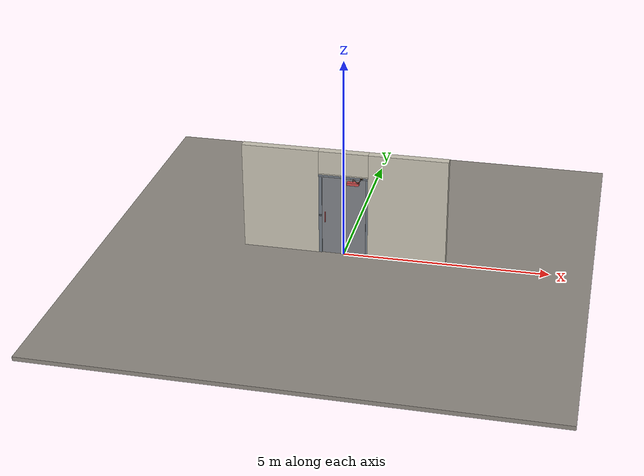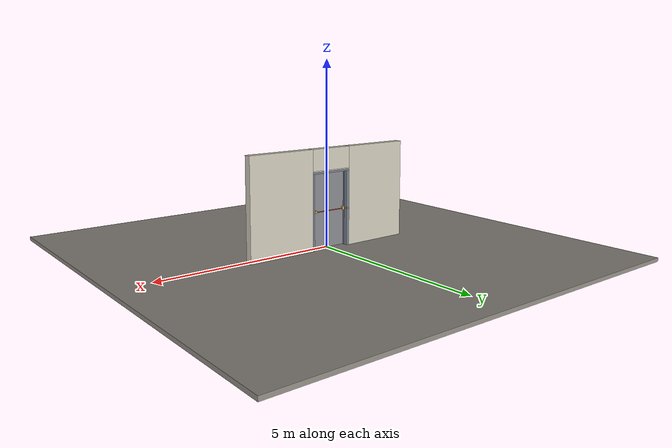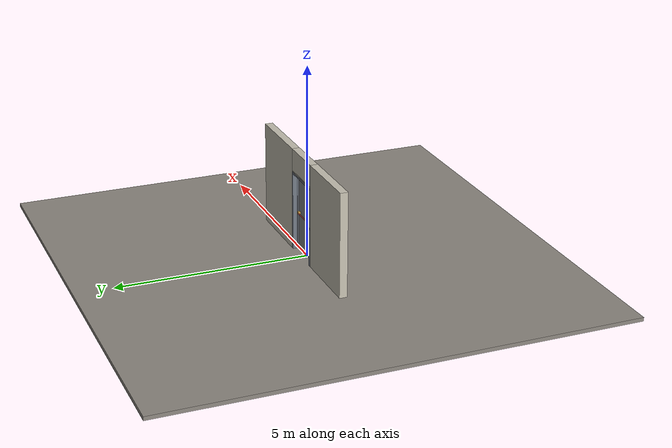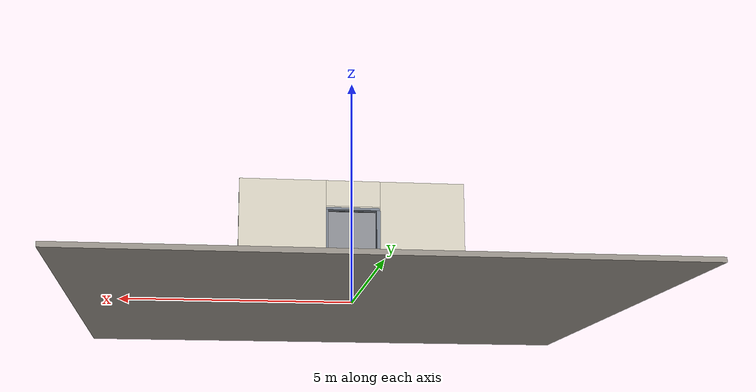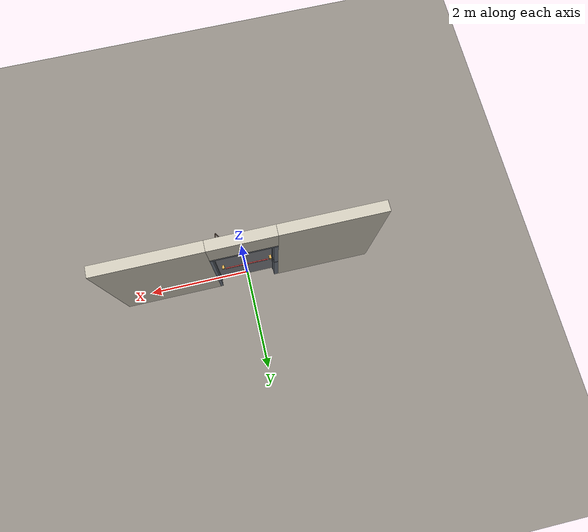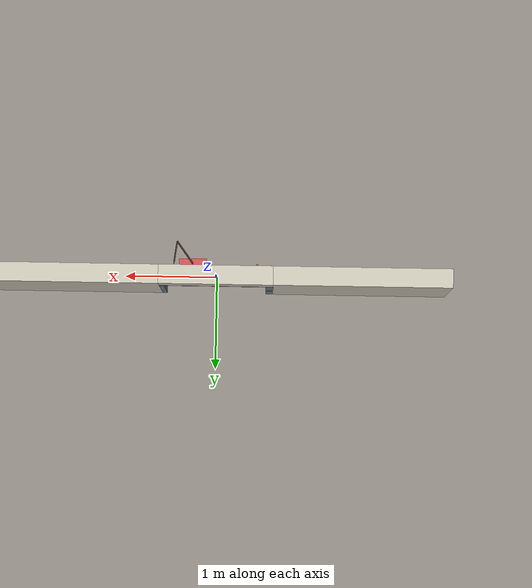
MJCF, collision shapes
<?xml version="1.0" ?>
<mujoco model="db0280_swing_single_full">
  <compiler angle="radian" meshdir="../../hardware" texturedir="../../textures" autolimits="true" inertiafromgeom="false"/>
  <option timestep="0.002" integrator="implicitfast" cone="elliptic" impratio="10" noslip_iterations="3">
    <flag multiccd="enable"/>
  </option>
  <size memory="16M"/>
  <default>
    <geom condim="4" solref="0.005 1" solimp="0.95 0.99 0.001"/>
    <joint solreflimit="0.005 1" solimplimit="0.95 0.99 0.001"/>
    <tendon solreflimit="0.005 1"/>
    <equality solref="0.002 1"/>
  </default>
  <visual>
    <headlight ambient="0.4 0.4 0.4" diffuse="0.7 0.7 0.7" specular="0.2 0.2 0.2"/>
    <quality shadowsize="4096"/>
    <map znear="0.01" zfar="60"/>
  </visual>
  <asset>
    <mesh name="closer_body_fdc4667657" file="closer_body_fdc4667657.obj"/>
    <mesh name="crossbar_c9bf20f5d4" file="crossbar_c9bf20f5d4.obj"/>
    <mesh name="exit_sign_a6449bfa2c" file="exit_sign_a6449bfa2c.obj"/>
    <mesh name="hinge_e22b26c0c1" file="hinge_e22b26c0c1.obj"/>
    <mesh name="hinge_jamb_e1d088f8dc" file="hinge_jamb_e1d088f8dc.obj"/>
    <mesh name="pull_f8d79d6331" file="pull_f8d79d6331.obj"/>
    <material name="mat_floor" rgba="0.55 0.53 0.5 1" specular="0.2" shininess="0.15" reflectance="0"/>
    <material name="mat_wall" rgba="0.78 0.76 0.7 1" specular="0.2" shininess="0.1" reflectance="0"/>
    <material name="mat_leaf" rgba="0.5 0.51 0.53 1" specular="0.2" shininess="0.49" reflectance="0"/>
    <material name="mat_hinge" rgba="0.65 0.66 0.68 1" specular="0.74" shininess="0.5" reflectance="0.36"/>
    <material name="mat_op_brass" rgba="0.85 0.66 0.3 1" specular="0.8" shininess="0.75" reflectance="0.4"/>
    <material name="mat_op_stainless" rgba="0.75 0.76 0.77 1" specular="0.8" shininess="0.65" reflectance="0.4"/>
    <material name="mat_bolt" rgba="0.75 0.76 0.77 1" specular="0.8" shininess="0.65" reflectance="0.4"/>
    <material name="mat_frame" rgba="0.45 0.48 0.52 1" specular="0.32" shininess="0.6" reflectance="0.08"/>
    <material name="mat_seal" rgba="0.1 0.1 0.1 1" specular="0.2" shininess="0.1" reflectance="0"/>
    <material name="mat_closer" rgba="0.22 0.17 0.13 1" specular="0.8" shininess="0.6" reflectance="0.4"/>
    <material name="mat_exit_sign" rgba="0.85 0.1 0.1 1" specular="0.2" shininess="0.6" reflectance="0"/>
    <material name="mat_sign_bracket" rgba="0.8 0.81 0.83 1" specular="0.8" shininess="0.6" reflectance="0.4"/>
    <texture name="skybox" type="skybox" builtin="gradient" rgb1="0.6 0.7 0.85" rgb2="0.9 0.92 0.95" width="256" height="256"/>
  </asset>
  <worldbody>
    <light name="sun" pos="1.5 -2.5 4" dir="-0.3 0.5 -0.8" directional="true" diffuse="0.8 0.8 0.8" specular="0.3 0.3 0.3" castshadow="true"/>
    <light name="fill" pos="-1.5 2.5 3" dir="0.3 -0.5 -0.7" directional="true" diffuse="0.35 0.35 0.4" castshadow="false"/>
    <camera name="robot_view" pos="0 -2.471187 1.734312" xyaxes="1 0 0 0 0.26963 0.962964" fovy="52"/>
    <camera name="far_view" pos="0 2.613187 1.734312" xyaxes="-1 0 0 0 -0.26963 0.962964" fovy="52"/>
    <camera name="iso" pos="-1.932062 -2.064437 2.141063" xyaxes="0.741536 -0.670913 0 0.242917 0.268487 0.932151" fovy="46"/>
    <camera name="detail_handle" pos="-0.263 -0.897 1.296" xyaxes="0.97561 0.219512 0 -0.070934 0.315262 0.94635" fovy="38"/>
    <geom name="floor" type="box" size="6 6 0.05" pos="0 0 -0.05" material="mat_floor" group="0" contype="1" conaffinity="1" friction="0.8 0.005 0.0001" density="2400"/>
    <geom name="wall_left" type="box" size="0.9415 0.1 1.35" pos="-1.5585 0.071 1.35" material="mat_wall" group="0" contype="1" conaffinity="1" friction="0.6 0.005 0.0001" density="800"/>
    <geom name="wall_right" type="box" size="0.9565 0.1 1.35" pos="1.5435 0.071 1.35" material="mat_wall" group="0" contype="1" conaffinity="1" friction="0.6 0.005 0.0001" density="800"/>
    <geom name="wall_header" type="box" size="0.602 0.1 0.2875" pos="-0.015 0.071 2.4125" material="mat_wall" group="0" contype="1" conaffinity="1" friction="0.6 0.005 0.0001" density="800"/>
    <geom name="hinge_0_jamb" type="mesh" mesh="hinge_jamb_e1d088f8dc" pos="0.534 -0.029 0.259" quat="0 0 1 0" material="mat_hinge" group="1" contype="0" conaffinity="0" density="7850"/>
    <geom name="hinge_1_jamb" type="mesh" mesh="hinge_jamb_e1d088f8dc" pos="0.534 -0.029 0.793" quat="0 0 1 0" material="mat_hinge" group="1" contype="0" conaffinity="0" density="7850"/>
    <geom name="hinge_2_jamb" type="mesh" mesh="hinge_jamb_e1d088f8dc" pos="0.534 -0.029 1.327" quat="0 0 1 0" material="mat_hinge" group="1" contype="0" conaffinity="0" density="7850"/>
    <geom name="hinge_3_jamb" type="mesh" mesh="hinge_jamb_e1d088f8dc" pos="0.534 -0.029 1.861" quat="0 0 1 0" material="mat_hinge" group="1" contype="0" conaffinity="0" density="7850"/>
    <geom name="jamb_hinge" type="box" size="0.025 0.1 1.0225" pos="0.562 0.071 1.0225" material="mat_frame" group="0" contype="1" conaffinity="1" friction="0.6 0.005 0.0001" density="300"/>
    <geom name="strike_1016_wall_n" type="box" size="0.04 0.08 0.02" pos="-0.577 0.091 1.016" material="mat_frame" group="0" contype="1" conaffinity="1" friction="0.6 0.005 0.0001" density="300"/>
    <geom name="strike_1016_wall_p" type="box" size="0.04 0.008 0.02" pos="-0.577 -0.019 1.016" material="mat_frame" group="0" contype="1" conaffinity="1" friction="0.6 0.005 0.0001" density="300"/>
    <geom name="strike_1016_ramp" type="box" size="0.04 0.018028 0.02" pos="-0.580282 -0.019812 1.016" quat="0.957092 0 0 -0.289784" material="mat_frame" group="0" contype="1" conaffinity="1" friction="0.12 0.005 0.0001" density="300"/>
    <geom name="strike_1016_back" type="box" size="0.0285 0.011 0.02" pos="-0.5885 0 1.016" material="mat_frame" group="0" contype="1" conaffinity="1" friction="0.6 0.005 0.0001" density="300"/>
    <geom name="jamb_strike_0" type="box" size="0.04 0.1 0.498" pos="-0.577 0.071 0.498" material="mat_frame" group="0" contype="1" conaffinity="1" friction="0.6 0.005 0.0001" density="300"/>
    <geom name="jamb_strike_1" type="box" size="0.04 0.1 0.5045" pos="-0.577 0.071 1.5405" material="mat_frame" group="0" contype="1" conaffinity="1" friction="0.6 0.005 0.0001" density="300"/>
    <geom name="jamb_head" type="box" size="0.602 0.1 0.025" pos="-0.015 0.071 2.07" material="mat_frame" group="0" contype="1" conaffinity="1" friction="0.6 0.005 0.0001" density="300"/>
    <geom name="head_stud" type="box" size="0.602 0.1 0.015" pos="-0.015 0.071 2.11" material="mat_wall" group="0" contype="1" conaffinity="1" friction="0.6 0.005 0.0001" density="500"/>
    <geom name="stop_hinge" type="box" size="0.0055 0.016 1.0225" pos="0.5315 0.0385 1.0225" material="mat_frame" group="0" contype="1" conaffinity="1" friction="0.6 0.005 0.0001" density="300"/>
    <geom name="stop_strike" type="box" size="0.0055 0.016 1.0225" pos="-0.5315 0.0385 1.0225" material="mat_frame" group="0" contype="1" conaffinity="1" friction="0.6 0.005 0.0001" density="300"/>
    <geom name="stop_head" type="box" size="0.537 0.016 0.0055" pos="0 0.0385 2.0395" material="mat_frame" group="0" contype="1" conaffinity="1" friction="0.6 0.005 0.0001" density="300"/>
    <geom name="seal_hinge" type="box" size="0.004 0.004 1.0225" pos="0.534 0.026 1.0225" material="mat_seal" group="1" contype="0" conaffinity="0" density="1100"/>
    <geom name="seal_strike" type="box" size="0.004 0.004 1.0225" pos="-0.534 0.026 1.0225" material="mat_seal" group="1" contype="0" conaffinity="0" density="1100"/>
    <geom name="seal_head" type="box" size="0.517 0.004 0.008" pos="0 0.026 2.033" material="mat_seal" group="1" contype="0" conaffinity="0" density="1100"/>
    <geom name="closer_bracket" type="box" size="0.03 0.012 0.014" pos="0.437 -0.041 2.075" material="mat_closer" group="1" contype="0" conaffinity="0" density="2700"/>
    <geom name="exit_sign" type="mesh" mesh="exit_sign_a6449bfa2c" pos="0 0.15 2.345" material="mat_exit_sign" group="2" contype="0" conaffinity="0" density="500"/>
    <geom name="exit_sign_bracket" type="box" size="0.05775 0.00875 0.0605" pos="0 0.15 2.185" material="mat_sign_bracket" group="2" contype="0" conaffinity="0" density="7850"/>
    <site name="approach_point" pos="0 -1.5 0" quat="1 0 0 0" size="0.05" rgba="0.2 0.9 0.2 0.5" group="4"/>
    <site name="goal_point" pos="0 1.5 0" quat="1 0 0 0" size="0.05" rgba="0.2 0.9 0.2 0.5" group="4"/>
    <site name="door_plane_center" pos="0 0 1.0225" quat="1 0 0 0" size="0.02" rgba="0.2 0.9 0.2 0.5" group="4"/>
    <body name="leaf" pos="0.537 0 0">
      <inertial pos="-0.488989 -0.015809 1.220136" mass="59.865488" quat="0.459253 0.479944 0.531546 -0.525547" diaginertia="5.335412841 24.441682998 29.655344889"/>
      <joint name="leaf_hinge" type="hinge" axis="0 0 1" pos="-0.003 -0.029 0" limited="true" range="0 1.745329" solreflimit="0.02 1" damping="12.475663" frictionloss="5.301062" stiffness="15.508058" springref="-1.827437" armature="0.02"/>
      <geom name="leaf_slab" type="box" size="0.5335 0.022 1.016" pos="-0.5365 0 1.025" material="mat_leaf" group="0" contype="1" conaffinity="1" friction="0.4 0.005 0.0001" density="1"/>
      <geom name="hinge_0" type="mesh" mesh="hinge_e22b26c0c1" pos="-0.003 -0.029 0.259" quat="0 0 1 0" material="mat_hinge" group="1" contype="0" conaffinity="0" density="7850"/>
      <geom name="hinge_1" type="mesh" mesh="hinge_e22b26c0c1" pos="-0.003 -0.029 0.793" quat="0 0 1 0" material="mat_hinge" group="1" contype="0" conaffinity="0" density="7850"/>
      <geom name="hinge_2" type="mesh" mesh="hinge_e22b26c0c1" pos="-0.003 -0.029 1.327" quat="0 0 1 0" material="mat_hinge" group="1" contype="0" conaffinity="0" density="7850"/>
      <geom name="hinge_3" type="mesh" mesh="hinge_e22b26c0c1" pos="-0.003 -0.029 1.861" quat="0 0 1 0" material="mat_hinge" group="1" contype="0" conaffinity="0" density="7850"/>
      <geom name="leaf_exit_device_case" type="box" size="0.022 0.033 0.045" pos="-1.025 0.055 1.016" material="mat_op_brass" group="0" contype="1" conaffinity="1" friction="0.6 0.005 0.0001" density="3000"/>
      <geom name="leaf_exit_device_end_case" type="box" size="0.022 0.03 0.035" pos="-0.11475 0.052 1.016" material="mat_op_brass" group="0" contype="1" conaffinity="1" friction="0.6 0.005 0.0001" density="3000"/>
      <geom name="leaf_far_pull_n" type="mesh" mesh="pull_f8d79d6331" pos="-0.98 -0.022 1.016" quat="0 0 -0.707107 0.707107" material="mat_op_stainless" group="1" contype="0" conaffinity="0" density="3000"/>
      <geom name="leaf_far_pull_col_n" type="capsule" size="0.0125 0.13" pos="-0.98 -0.097 1.016" material="mat_op_stainless" group="3" contype="1" conaffinity="1" rgba="0.8 0.3 0.3 0.25" friction="0.7 0.01 0.0001" density="3000"/>
      <geom name="closer_body" type="mesh" mesh="closer_body_fdc4667657" pos="-0.3 -0.022 1.952" quat="0 0 -0.707107 0.707107" material="mat_closer" group="1" contype="0" conaffinity="0" density="2000"/>
      <geom name="closer_body_col" type="box" size="0.145 0.05 0.035" pos="-0.3 -0.072 1.952" material="mat_closer" group="3" contype="1" conaffinity="1" rgba="0.8 0.3 0.3 0.25" friction="0.6 0.005 0.0001" density="2000"/>
      <geom name="closer_pinion_shaft" type="cylinder" size="0.008 0.0615" pos="-0.3 -0.072 2.0135" material="mat_closer" group="1" contype="0" conaffinity="0" density="2700"/>
      <site name="leaf_far_pull_grip_n" pos="-0.98 -0.097 1.016" quat="1 0 0 0" size="0.012" rgba="0.2 0.9 0.2 0.5" group="4"/>
      <site name="leaf_edge_mid" pos="-1.07 0 1.016" quat="1 0 0 0" size="0.02" rgba="0.2 0.9 0.2 0.5" group="4"/>
      <body name="leaf_exit_device" pos="-0.569875 0.022 1.016">
        <inertial pos="0 0.05821 0" mass="2.546198" quat="0 1 0 0" diaginertia="0.000388152 0.159483858 0.15968175"/>
        <joint name="leaf_exit_device_hinge" type="hinge" axis="-1 0 0" limited="true" range="0 0.35" damping="0.955383" frictionloss="0.14" stiffness="12" springref="-0.333333" armature="0.01"/>
        <geom name="leaf_exit_device_mesh" type="mesh" mesh="crossbar_c9bf20f5d4" pos="0 0 0" quat="0 0 0.707107 0.707107" material="mat_op_brass" group="1" contype="0" conaffinity="0" density="3000"/>
        <geom name="leaf_exit_device_col" type="capsule" size="0.0125 0.400125" pos="0 0.06 0" quat="0.707107 0 0.707107 0" material="mat_op_brass" group="3" contype="1" conaffinity="1" rgba="0.8 0.3 0.3 0.25" friction="0.7 0.01 0.0001" density="3000"/>
        <site name="leaf_exit_device_push" pos="0 0.06 0" quat="1 0 0 0" size="0.015" rgba="0.2 0.9 0.2 0.5" group="4"/>
      </body>
      <body name="leaf_latch_bolt" pos="-1.07 0 1.016">
        <inertial pos="0.0055 0 0" mass="0.102826" quat="0.92388 0.382683 0 0" diaginertia="0.000004365 0.000018287 0.000018287"/>
        <joint name="leaf_latch_bolt_slide" type="slide" axis="1 0 0" limited="true" range="0 0.019" damping="2" frictionloss="0.3" stiffness="800" springref="-0.01" armature="0.1"/>
        <geom name="leaf_latch_bolt_capsule" type="capsule" size="0.0095 0.015" pos="0.0055 0 0" quat="0.707107 0 -0.707107 0" material="mat_bolt" group="0" contype="1" conaffinity="1" friction="0.2 0.005 0.0001" density="8500"/>
      </body>
      <body name="closer_arm_main" pos="-0.3 -0.072 2.075" quat="0.890947 0 0 -0.454107">
        <inertial pos="0.14 0 0" mass="0.12096" quat="1 0 0 0" diaginertia="0.000003588 0.00079128 0.000792852"/>
        <joint name="closer_pinion" type="hinge" axis="0 0 1" limited="false" damping="0.01" armature="0.002"/>
        <geom name="closer_arm_main_geom" type="box" size="0.14 0.008 0.005" pos="0.14 0 0" material="mat_closer" group="1" contype="0" conaffinity="0" density="2700"/>
        <body name="closer_arm_fore" pos="0.28 0 0" quat="0.373215 0 0 0.927745">
          <inertial pos="0.128088 0 0" mass="0.076531" quat="1 0 0 0" diaginertia="0.000001771 0.000437665 0.000438201"/>
          <joint name="closer_elbow" type="hinge" axis="0 0 1" limited="false" damping="0.01" armature="0.002"/>
          <geom name="closer_arm_fore_geom" type="box" size="0.1125 0.007 0.004" pos="0.1125 0 0" material="mat_closer" group="1" contype="0" conaffinity="0" density="2700"/>
          <geom name="closer_fore_neck" type="box" size="0.0175 0.003 0.003" pos="0.2425 0 0" material="mat_closer" group="1" contype="0" conaffinity="0" density="2700"/>
          <geom name="closer_fore_pivot" type="cylinder" size="0.005 0.012" pos="0.26 0 0" material="mat_closer" group="1" contype="0" conaffinity="0" density="2700"/>
        </body>
      </body>
    </body>
  </worldbody>
  <tendon>
    <fixed name="leaf_latch_bolt_coupling" limited="true" range="0 10">
      <joint joint="leaf_latch_bolt_slide" coef="1"/>
      <joint joint="leaf_exit_device_hinge" coef="-0.059375"/>
    </fixed>
  </tendon>
  <equality>
    <connect name="closer_arm_connect" body1="closer_arm_fore" body2="world" anchor="0.26 0 0" active="true"/>
  </equality>
  <contact>
    <exclude body1="closer_arm_main" body2="leaf"/>
    <exclude body1="closer_arm_fore" body2="leaf"/>
    <exclude body1="closer_arm_main" body2="closer_arm_fore"/>
  </contact>
  <sensor>
    <jointpos name="leaf_hinge_pos" joint="leaf_hinge"/>
    <jointvel name="leaf_hinge_vel" joint="leaf_hinge"/>
    <jointpos name="leaf_exit_device_hinge_pos" joint="leaf_exit_device_hinge"/>
    <jointvel name="leaf_exit_device_hinge_vel" joint="leaf_exit_device_hinge"/>
    <jointpos name="leaf_latch_bolt_slide_pos" joint="leaf_latch_bolt_slide"/>
    <jointvel name="leaf_latch_bolt_slide_vel" joint="leaf_latch_bolt_slide"/>
  </sensor>
</mujoco>
